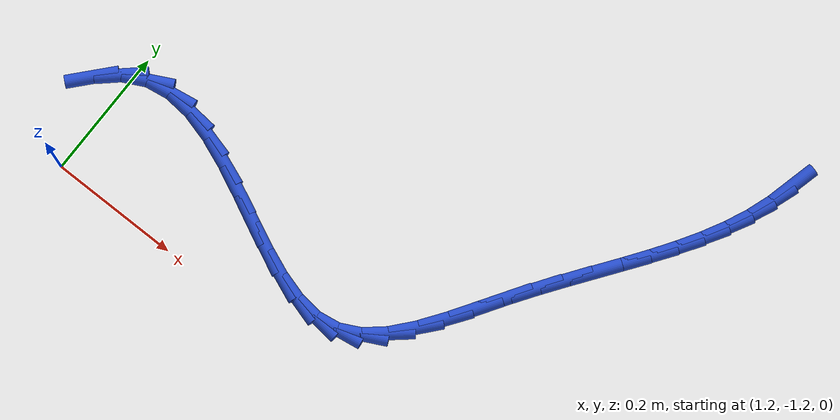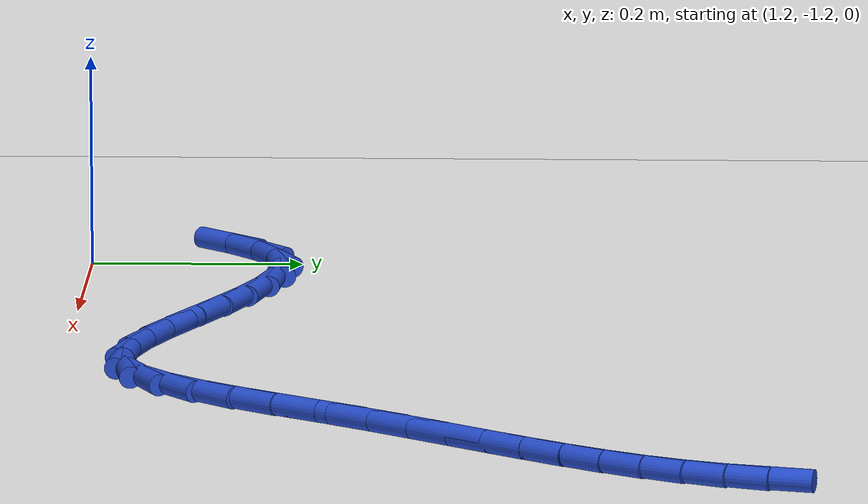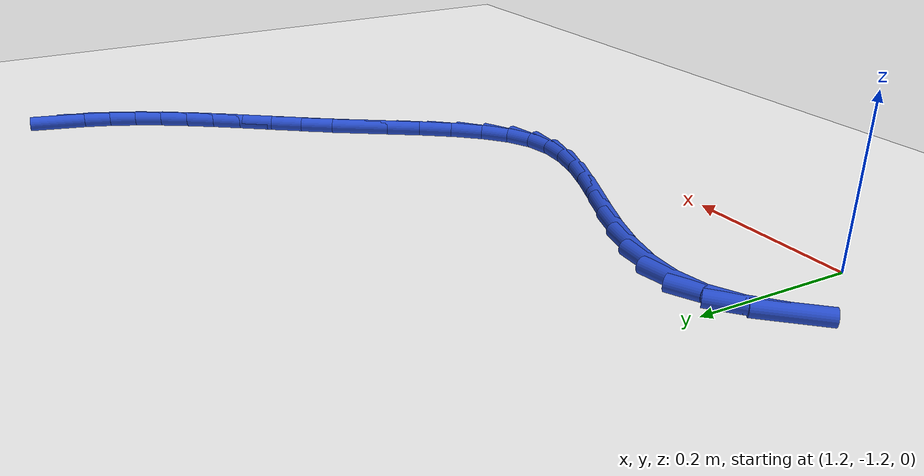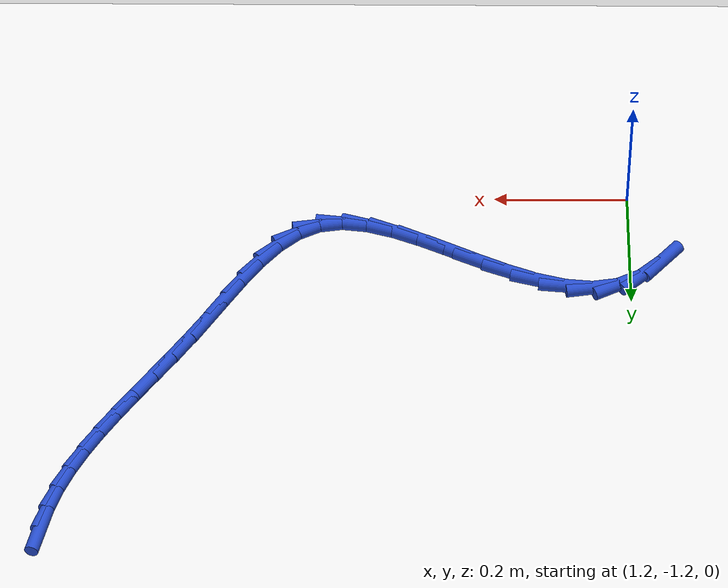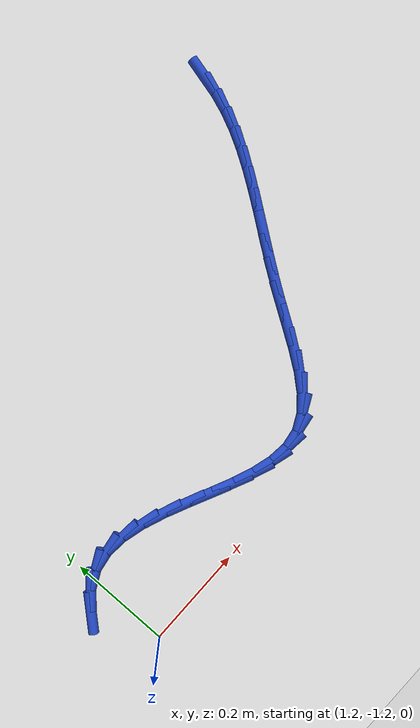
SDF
<sdf version="1.6">
 <world name="default">
  <model name="ground_plane">
   <static>1</static>
   <link name="link">
    <collision name="collision">
     <geometry><plane><normal>0 0 1</normal><size>100 100</size></plane></geometry>
     <surface><friction><ode><mu>100</mu><mu2>50</mu2></ode></friction></surface>
    </collision>
    <visual name="visual">
     <cast_shadows>0</cast_shadows>
     <geometry><plane><normal>0 0 1</normal><size>100 100</size></plane></geometry>
     <material>
      <script><uri>file://media/materials/scripts/gazebo.material</uri><name>Gazebo/WhiteGlow</name></script>
     </material>
    </visual>
   </link>
  </model>
  <model name="line">
   <link name="link_106">
    <pose>2.0496931979581685 -0.5671373074407235 0.01 0 1.57 1.3274562523395879</pose>
    <collision name="collision">
     <geometry><cylinder><radius>0.01</radius><length>0.08</length></cylinder></geometry>
    </collision>
    <visual name="visual">
     <material>
      <script><name>Gazebo/Blue</name><uri>file://media/materials/scripts/gazebo.material</uri></script>
     </material>
     <geometry><cylinder><radius>0.01</radius><length>0.08</length></cylinder></geometry>
    </visual>
   </link>
   <link name="link_107">
    <pose>2.040693189425233 -0.603389700150394 0.01 0 1.57 1.235694930618712</pose>
    <collision name="collision">
     <geometry><cylinder><radius>0.01</radius><length>0.08</length></cylinder></geometry>
    </collision>
    <visual name="visual">
     <material>
      <script><name>Gazebo/Blue</name><uri>file://media/materials/scripts/gazebo.material</uri></script>
     </material>
     <geometry><cylinder><radius>0.01</radius><length>0.08</length></cylinder></geometry>
    </visual>
   </link>
   <link name="link_108">
    <pose>2.028420795992459 -0.6386314201744265 0.01 0 1.57 1.1494237462017467</pose>
    <collision name="collision">
     <geometry><cylinder><radius>0.01</radius><length>0.08</length></cylinder></geometry>
    </collision>
    <visual name="visual">
     <material>
      <script><name>Gazebo/Blue</name><uri>file://media/materials/scripts/gazebo.material</uri></script>
     </material>
     <geometry><cylinder><radius>0.01</radius><length>0.08</length></cylinder></geometry>
    </visual>
   </link>
   <link name="link_109">
    <pose>2.0130085064226164 -0.673016976668309 0.01 0 1.57 1.0784808780923654</pose>
    <collision name="collision">
     <geometry><cylinder><radius>0.01</radius><length>0.08</length></cylinder></geometry>
    </collision>
    <visual name="visual">
     <material>
      <script><name>Gazebo/Blue</name><uri>file://media/materials/scripts/gazebo.material</uri></script>
     </material>
     <geometry><cylinder><radius>0.01</radius><length>0.08</length></cylinder></geometry>
    </visual>
   </link>
   <link name="link_110">
    <pose>1.9948716317684645 -0.7068313378094808 0.01 0 1.57 1.0233037302745454</pose>
    <collision name="collision">
     <geometry><cylinder><radius>0.01</radius><length>0.08</length></cylinder></geometry>
    </collision>
    <visual name="visual">
     <material>
      <script><name>Gazebo/Blue</name><uri>file://media/materials/scripts/gazebo.material</uri></script>
     </material>
     <geometry><cylinder><radius>0.01</radius><length>0.08</length></cylinder></geometry>
    </visual>
   </link>
   <link name="link_111">
    <pose>1.9744296723801569 -0.7403614041960588 0.01 0 1.57 0.9833631646700096</pose>
    <collision name="collision">
     <geometry><cylinder><radius>0.01</radius><length>0.08</length></cylinder></geometry>
    </collision>
    <visual name="visual">
     <material>
      <script><name>Gazebo/Blue</name><uri>file://media/materials/scripts/gazebo.material</uri></script>
     </material>
     <geometry><cylinder><radius>0.01</radius><length>0.08</length></cylinder></geometry>
    </visual>
   </link>
   <link name="link_112">
    <pose>1.9521021286078453 -0.7738940764261585 0.01 0 1.57 0.9577306663020836</pose>
    <collision name="collision">
     <geometry><cylinder><radius>0.01</radius><length>0.08</length></cylinder></geometry>
    </collision>
    <visual name="visual">
     <material>
      <script><name>Gazebo/Blue</name><uri>file://media/materials/scripts/gazebo.material</uri></script>
     </material>
     <geometry><cylinder><radius>0.01</radius><length>0.08</length></cylinder></geometry>
    </visual>
   </link>
   <link name="link_113">
    <pose>1.9283085008016823 -0.8077162550978957 0.01 0 1.57 0.9453726469186063</pose>
    <collision name="collision">
     <geometry><cylinder><radius>0.01</radius><length>0.08</length></cylinder></geometry>
    </collision>
    <visual name="visual">
     <material>
      <script><name>Gazebo/Blue</name><uri>file://media/materials/scripts/gazebo.material</uri></script>
     </material>
     <geometry><cylinder><radius>0.01</radius><length>0.08</length></cylinder></geometry>
    </visual>
   </link>
   <link name="link_114">
    <pose>1.9034682893118198 -0.8421148408093856 0.01 0 1.57 0.9453043561802906</pose>
    <collision name="collision">
     <geometry><cylinder><radius>0.01</radius><length>0.08</length></cylinder></geometry>
    </collision>
    <visual name="visual">
     <material>
      <script><name>Gazebo/Blue</name><uri>file://media/materials/scripts/gazebo.material</uri></script>
     </material>
     <geometry><cylinder><radius>0.01</radius><length>0.08</length></cylinder></geometry>
    </visual>
   </link>
   <link name="link_115">
    <pose>1.87800099448841 -0.8773767341587452 0.01 0 1.57 0.9566428065382541</pose>
    <collision name="collision">
     <geometry><cylinder><radius>0.01</radius><length>0.08</length></cylinder></geometry>
    </collision>
    <visual name="visual">
     <material>
      <script><name>Gazebo/Blue</name><uri>file://media/materials/scripts/gazebo.material</uri></script>
     </material>
     <geometry><cylinder><radius>0.01</radius><length>0.08</length></cylinder></geometry>
    </visual>
   </link>
   <link name="link_116">
    <pose>1.8523261166816067 -0.9137888357440884 0.01 0 1.57 0.9785957255590282</pose>
    <collision name="collision">
     <geometry><cylinder><radius>0.01</radius><length>0.08</length></cylinder></geometry>
    </collision>
    <visual name="visual">
     <material>
      <script><name>Gazebo/Blue</name><uri>file://media/materials/scripts/gazebo.material</uri></script>
     </material>
     <geometry><cylinder><radius>0.01</radius><length>0.08</length></cylinder></geometry>
    </visual>
   </link>
   <link name="link_117">
    <pose>1.8268631558228483 -0.9516380452125941 0.01 0 1.57 1.0022838890918666</pose>
    <collision name="collision">
     <geometry><cylinder><radius>0.01</radius><length>0.08</length></cylinder></geometry>
    </collision>
    <visual name="visual">
     <material>
      <script><name>Gazebo/Blue</name><uri>file://media/materials/scripts/gazebo.material</uri></script>
     </material>
     <geometry><cylinder><radius>0.01</radius><length>0.08</length></cylinder></geometry>
    </visual>
   </link>
   <link name="link_118">
    <pose>1.8018477355656695 -0.9907936611752627 0.01 0 1.57 0.9968432728091857</pose>
    <collision name="collision">
     <geometry><cylinder><radius>0.01</radius><length>0.08</length></cylinder></geometry>
    </collision>
    <visual name="visual">
     <material>
      <script><name>Gazebo/Blue</name><uri>file://media/materials/scripts/gazebo.material</uri></script>
     </material>
     <geometry><cylinder><radius>0.01</radius><length>0.08</length></cylinder></geometry>
    </visual>
   </link>
   <link name="link_119">
    <pose>1.7768088042134316 -1.029520053310242 0.01 0 1.57 0.953055130593986</pose>
    <collision name="collision">
     <geometry><cylinder><radius>0.01</radius><length>0.08</length></cylinder></geometry>
    </collision>
    <visual name="visual">
     <material>
      <script><name>Gazebo/Blue</name><uri>file://media/materials/scripts/gazebo.material</uri></script>
     </material>
     <geometry><cylinder><radius>0.01</radius><length>0.08</length></cylinder></geometry>
    </visual>
   </link>
   <link name="link_120">
    <pose>1.7511055683061585 -1.0656960911264433 0.01 0 1.57 0.8620889755050166</pose>
    <collision name="collision">
     <geometry><cylinder><radius>0.01</radius><length>0.08</length></cylinder></geometry>
    </collision>
    <visual name="visual">
     <material>
      <script><name>Gazebo/Blue</name><uri>file://media/materials/scripts/gazebo.material</uri></script>
     </material>
     <geometry><cylinder><radius>0.01</radius><length>0.08</length></cylinder></geometry>
    </visual>
   </link>
   <link name="link_121">
    <pose>1.72409723438388 -1.0972006441327788 0.01 0 1.57 0.7065126240399746</pose>
    <collision name="collision">
     <geometry><cylinder><radius>0.01</radius><length>0.08</length></cylinder></geometry>
    </collision>
    <visual name="visual">
     <material>
      <script><name>Gazebo/Blue</name><uri>file://media/materials/scripts/gazebo.material</uri></script>
     </material>
     <geometry><cylinder><radius>0.01</radius><length>0.08</length></cylinder></geometry>
    </visual>
   </link>
   <link name="link_122">
    <pose>1.6951430089866202 -1.1219125818381608 0.01 0 1.57 0.4643508731549533</pose>
    <collision name="collision">
     <geometry><cylinder><radius>0.01</radius><length>0.08</length></cylinder></geometry>
    </collision>
    <visual name="visual">
     <material>
      <script><name>Gazebo/Blue</name><uri>file://media/materials/scripts/gazebo.material</uri></script>
     </material>
     <geometry><cylinder><radius>0.01</radius><length>0.08</length></cylinder></geometry>
    </visual>
   </link>
   <link name="link_123">
    <pose>1.6636020986544073 -1.1377107737515022 0.01 0 1.57 0.14976290322085586</pose>
    <collision name="collision">
     <geometry><cylinder><radius>0.01</radius><length>0.08</length></cylinder></geometry>
    </collision>
    <visual name="visual">
     <material>
      <script><name>Gazebo/Blue</name><uri>file://media/materials/scripts/gazebo.material</uri></script>
     </material>
     <geometry><cylinder><radius>0.01</radius><length>0.08</length></cylinder></geometry>
    </visual>
   </link>
   <link name="link_124">
    <pose>1.6289650363989507 -1.1429372540883327 0.01 0 1.57 -0.11280876439331167</pose>
    <collision name="collision">
     <geometry><cylinder><radius>0.01</radius><length>0.08</length></cylinder></geometry>
    </collision>
    <visual name="visual">
     <material>
      <script><name>Gazebo/Blue</name><uri>file://media/materials/scripts/gazebo.material</uri></script>
     </material>
     <geometry><cylinder><radius>0.01</radius><length>0.08</length></cylinder></geometry>
    </visual>
   </link>
   <link name="link_125">
    <pose>1.5915047400657367 -1.138693386827268 0.01 0 1.57 -0.2840167543535906</pose>
    <collision name="collision">
     <geometry><cylinder><radius>0.01</radius><length>0.08</length></cylinder></geometry>
    </collision>
    <visual name="visual">
     <material>
      <script><name>Gazebo/Blue</name><uri>file://media/materials/scripts/gazebo.material</uri></script>
     </material>
     <geometry><cylinder><radius>0.01</radius><length>0.08</length></cylinder></geometry>
    </visual>
   </link>
   <link name="link_126">
    <pose>1.5517826740245628 -1.1270981873355979 0.01 0 1.57 -0.38584653551681036</pose>
    <collision name="collision">
     <geometry><cylinder><radius>0.01</radius><length>0.08</length></cylinder></geometry>
    </collision>
    <visual name="visual">
     <material>
      <script><name>Gazebo/Blue</name><uri>file://media/materials/scripts/gazebo.material</uri></script>
     </material>
     <geometry><cylinder><radius>0.01</radius><length>0.08</length></cylinder></geometry>
    </visual>
   </link>
   <link name="link_127">
    <pose>1.5103607582386653 -1.1102722777762406 0.01 0 1.57 -0.4380681813391927</pose>
    <collision name="collision">
     <geometry><cylinder><radius>0.01</radius><length>0.08</length></cylinder></geometry>
    </collision>
    <visual name="visual">
     <material>
      <script><name>Gazebo/Blue</name><uri>file://media/materials/scripts/gazebo.material</uri></script>
     </material>
     <geometry><cylinder><radius>0.01</radius><length>0.08</length></cylinder></geometry>
    </visual>
   </link>
   <link name="link_128">
    <pose>1.4678009126712779 -1.0903362803121133 0.01 0 1.57 -0.45166158929098105</pose>
    <collision name="collision">
     <geometry><cylinder><radius>0.01</radius><length>0.08</length></cylinder></geometry>
    </collision>
    <visual name="visual">
     <material>
      <script><name>Gazebo/Blue</name><uri>file://media/materials/scripts/gazebo.material</uri></script>
     </material>
     <geometry><cylinder><radius>0.01</radius><length>0.08</length></cylinder></geometry>
    </visual>
   </link>
   <link name="link_129">
    <pose>1.424665057285636 -1.069410817106134 0.01 0 1.57 -0.4300925697415398</pose>
    <collision name="collision">
     <geometry><cylinder><radius>0.01</radius><length>0.08</length></cylinder></geometry>
    </collision>
    <visual name="visual">
     <material>
      <script><name>Gazebo/Blue</name><uri>file://media/materials/scripts/gazebo.material</uri></script>
     </material>
     <geometry><cylinder><radius>0.01</radius><length>0.08</length></cylinder></geometry>
    </visual>
   </link>
   <link name="link_130">
    <pose>1.3815151120449738 -1.0496165103212196 0.01 0 1.57 -0.3703822472726112</pose>
    <collision name="collision">
     <geometry><cylinder><radius>0.01</radius><length>0.08</length></cylinder></geometry>
    </collision>
    <visual name="visual">
     <material>
      <script><name>Gazebo/Blue</name><uri>file://media/materials/scripts/gazebo.material</uri></script>
     </material>
     <geometry><cylinder><radius>0.01</radius><length>0.08</length></cylinder></geometry>
    </visual>
   </link>
   <link name="link_131">
    <pose>1.3389129969125262 -1.0330739821202881 0.01 0 1.57 -0.26297464371621715</pose>
    <collision name="collision">
     <geometry><cylinder><radius>0.01</radius><length>0.08</length></cylinder></geometry>
    </collision>
    <visual name="visual">
     <material>
      <script><name>Gazebo/Blue</name><uri>file://media/materials/scripts/gazebo.material</uri></script>
     </material>
     <geometry><cylinder><radius>0.01</radius><length>0.08</length></cylinder></geometry>
    </visual>
   </link>
   <link name="link_132">
    <pose>1.297420631851529 -1.0219038546662569 0.01 0 1.57 -0.0920804164982322</pose>
    <collision name="collision">
     <geometry><cylinder><radius>0.01</radius><length>0.08</length></cylinder></geometry>
    </collision>
    <visual name="visual">
     <material>
      <script><name>Gazebo/Blue</name><uri>file://media/materials/scripts/gazebo.material</uri></script>
     </material>
     <geometry><cylinder><radius>0.01</radius><length>0.08</length></cylinder></geometry>
    </visual>
   </link>
   <link name="link_133">
    <pose>1.2575999368252166 -1.0182267501220443 0.01 0 1.57 0.15664689959098516</pose>
    <collision name="collision">
     <geometry><cylinder><radius>0.01</radius><length>0.08</length></cylinder></geometry>
    </collision>
    <visual name="visual">
     <material>
      <script><name>Gazebo/Blue</name><uri>file://media/materials/scripts/gazebo.material</uri></script>
     </material>
     <geometry><cylinder><radius>0.01</radius><length>0.08</length></cylinder></geometry>
    </visual>
   </link>
   <link name="link_134">
    <pose>1.220012831796824 -1.0241632906505673 0.01 0 1.57 0.4695134125396415</pose>
    <collision name="collision">
     <geometry><cylinder><radius>0.01</radius><length>0.08</length></cylinder></geometry>
    </collision>
    <visual name="visual">
     <material>
      <script><name>Gazebo/Blue</name><uri>file://media/materials/scripts/gazebo.material</uri></script>
     </material>
     <geometry><cylinder><radius>0.01</radius><length>0.08</length></cylinder></geometry>
    </visual>
   </link>
   <link name="link_135">
    <pose>1.1852185235360109 -1.0418163188899427 0.01 0 1.57 0.73343877789138</pose>
    <collision name="collision">
     <geometry><cylinder><radius>0.01</radius><length>0.08</length></cylinder></geometry>
    </collision>
    <visual name="visual">
     <material>
      <script><name>Gazebo/Blue</name><uri>file://media/materials/scripts/gazebo.material</uri></script>
     </material>
     <geometry><cylinder><radius>0.01</radius><length>0.08</length></cylinder></geometry>
    </visual>
   </link>
   <link name="link_136">
    <pose>1.1533551400380273 -1.070529353343841 0.01 0 1.57 0.8444330419263851</pose>
    <collision name="collision">
     <geometry><cylinder><radius>0.01</radius><length>0.08</length></cylinder></geometry>
    </collision>
    <visual name="visual">
     <material>
      <script><name>Gazebo/Blue</name><uri>file://media/materials/scripts/gazebo.material</uri></script>
     </material>
     <geometry><cylinder><radius>0.01</radius><length>0.08</length></cylinder></geometry>
    </visual>
   </link>
  </model>
 </world>
</sdf>
